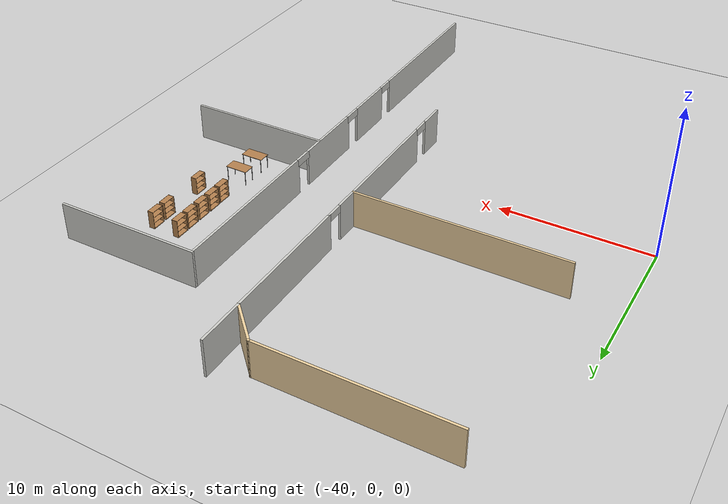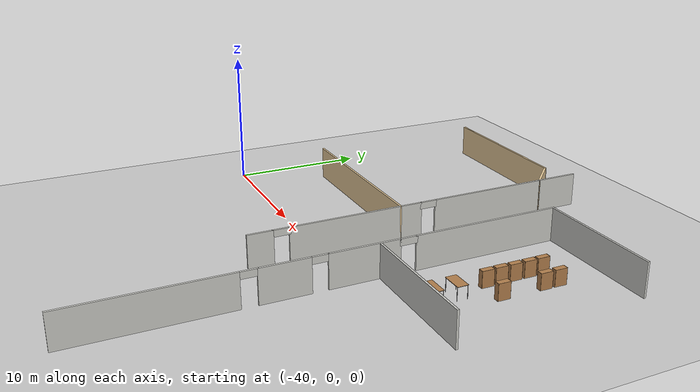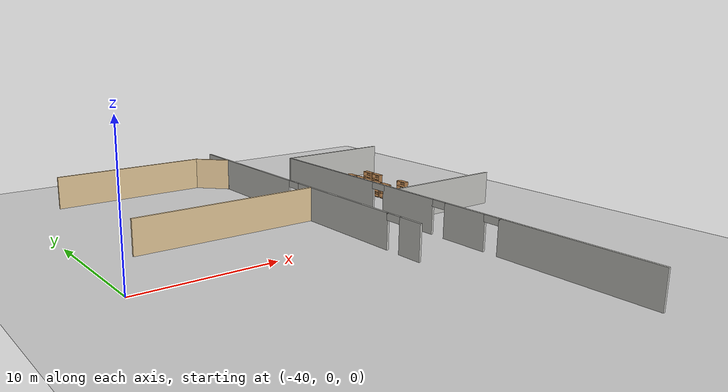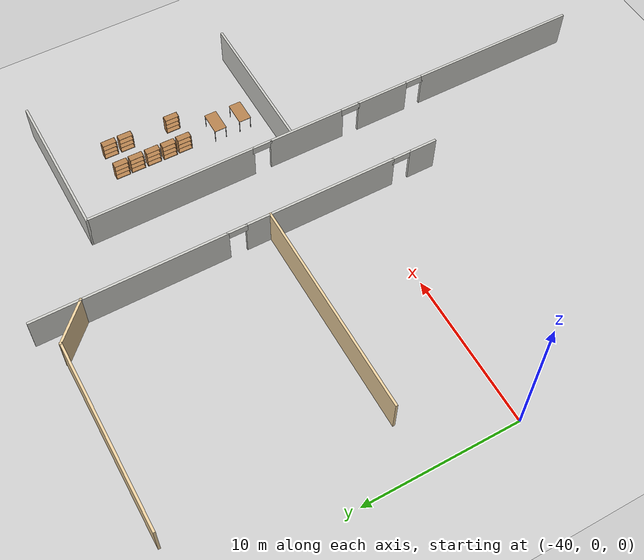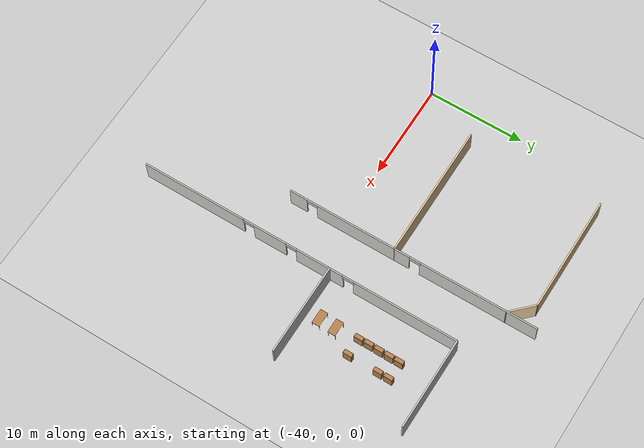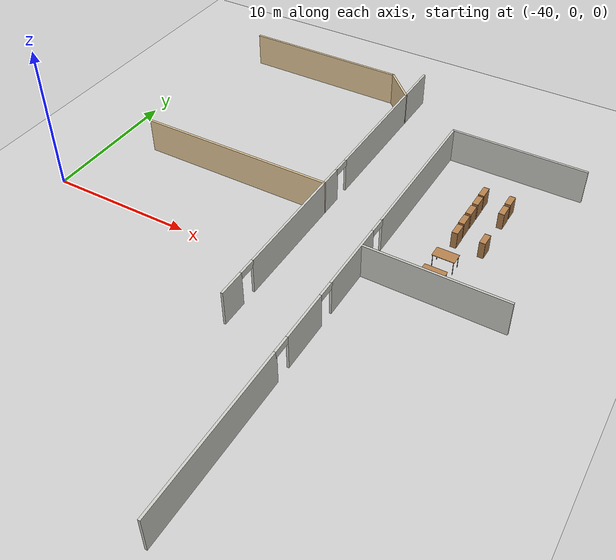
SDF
<sdf version="1.7">
 <world name="default">
  <model name="ground_plane">
   <static>1</static>
   <link name="link">
    <collision name="collision">
     <geometry><plane><normal>0 0 1</normal><size>100 100</size></plane></geometry>
     <surface>
      <contact><collide_bitmask>65535</collide_bitmask></contact>
      <friction><ode><mu>100</mu><mu2>50</mu2></ode></friction>
     </surface>
    </collision>
    <visual name="visual">
     <cast_shadows>0</cast_shadows>
     <geometry><plane><normal>0 0 1</normal><size>100 100</size></plane></geometry>
     <material>
      <script><uri>file://media/materials/scripts/gazebo.material</uri><name>Gazebo/Grey</name></script>
     </material>
    </visual>
   </link>
  </model>
  <model name="Building">
   <pose>0.746899 -1.50406 0 0 -0 1.57073</pose>
   <link name="Wall_27">
    <pose>1.91161 23.7463 0 0 -0 0</pose>
    <visual name="Wall_27_Visual_0">
     <pose>-4.71792 0 1.25 0 -0 0</pose>
     <geometry><box><size>1.86417 0.15 2.5</size></box></geometry>
     <material>
      <script><uri>file://media/materials/scripts/gazebo.material</uri><name>Gazebo/CeilingTiled</name></script>
      <ambient>1 1 1 1</ambient>
     </material>
     <meta><layer>0</layer></meta>
    </visual>
    <collision name="Wall_27_Collision_0">
     <geometry><box><size>1.86417 0.15 2.5</size></box></geometry>
     <pose>-4.71792 0 1.25 0 -0 0</pose>
    </collision>
    <visual name="Wall_27_Visual_1">
     <pose>1.48208 0 1.25 0 -0 0</pose>
     <geometry><box><size>8.33583 0.15 2.5</size></box></geometry>
     <material>
      <script><uri>file://media/materials/scripts/gazebo.material</uri><name>Gazebo/CeilingTiled</name></script>
      <ambient>1 1 1 1</ambient>
     </material>
     <meta><layer>0</layer></meta>
    </visual>
    <collision name="Wall_27_Collision_1">
     <geometry><box><size>8.33583 0.15 2.5</size></box></geometry>
     <pose>1.48208 0 1.25 0 -0 0</pose>
    </collision>
    <visual name="Wall_27_Visual_2">
     <pose>-3.23583 0 2.25 0 -0 0</pose>
     <geometry><box><size>1.3 0.15 0.5</size></box></geometry>
     <material>
      <script><uri>file://media/materials/scripts/gazebo.material</uri><name>Gazebo/CeilingTiled</name></script>
      <ambient>1 1 1 1</ambient>
     </material>
     <meta><layer>0</layer></meta>
    </visual>
    <collision name="Wall_27_Collision_2">
     <geometry><box><size>1.3 0.15 0.5</size></box></geometry>
     <pose>-3.23583 0 2.25 0 -0 0</pose>
    </collision>
   </link>
   <link name="Wall_28">
    <collision name="Wall_28_Collision">
     <geometry><box><size>14 0.15 2.5</size></box></geometry>
     <pose>0 0 1.25 0 -0 0</pose>
    </collision>
    <visual name="Wall_28_Visual">
     <pose>0 0 1.25 0 -0 0</pose>
     <geometry><box><size>14 0.15 2.5</size></box></geometry>
     <material>
      <script><uri>file://media/materials/scripts/gazebo.material</uri><name>Gazebo/Grey</name></script>
      <ambient>0.921569 0.807843 0.615686 1</ambient>
     </material>
     <meta><layer>0</layer></meta>
    </visual>
    <pose>7.58661 30.6713 0 0 -0 1.5708</pose>
   </link>
   <link name="Wall_30">
    <pose>13.5116 23.7463 0 0 -0 0</pose>
    <visual name="Wall_30_Visual_0">
     <pose>-5.09853 0 1.25 0 -0 0</pose>
     <geometry><box><size>1.60295 0.15 2.5</size></box></geometry>
     <material>
      <script><uri>file://media/materials/scripts/gazebo.material</uri><name>Gazebo/CeilingTiled</name></script>
      <ambient>1 1 1 1</ambient>
     </material>
     <meta><layer>0</layer></meta>
    </visual>
    <collision name="Wall_30_Collision_0">
     <geometry><box><size>1.60295 0.15 2.5</size></box></geometry>
     <pose>-5.09853 0 1.25 0 -0 0</pose>
    </collision>
    <visual name="Wall_30_Visual_1">
     <pose>1.35147 0 1.25 0 -0 0</pose>
     <geometry><box><size>9.09705 0.15 2.5</size></box></geometry>
     <material>
      <script><uri>file://media/materials/scripts/gazebo.material</uri><name>Gazebo/CeilingTiled</name></script>
      <ambient>1 1 1 1</ambient>
     </material>
     <meta><layer>0</layer></meta>
    </visual>
    <collision name="Wall_30_Collision_1">
     <geometry><box><size>9.09705 0.15 2.5</size></box></geometry>
     <pose>1.35147 0 1.25 0 -0 0</pose>
    </collision>
    <visual name="Wall_30_Visual_2">
     <pose>-3.74705 0 2.25 0 -0 0</pose>
     <geometry><box><size>1.3 0.15 0.5</size></box></geometry>
     <material>
      <script><uri>file://media/materials/scripts/gazebo.material</uri><name>Gazebo/CeilingTiled</name></script>
      <ambient>1 1 1 1</ambient>
     </material>
     <meta><layer>0</layer></meta>
    </visual>
    <collision name="Wall_30_Collision_2">
     <geometry><box><size>1.3 0.15 0.5</size></box></geometry>
     <pose>-3.74705 0 2.25 0 -0 0</pose>
    </collision>
   </link>
   <link name="Wall_31">
    <collision name="Wall_31_Collision">
     <geometry><box><size>3 0.15 2.5</size></box></geometry>
     <pose>0 0 1.25 0 -0 0</pose>
    </collision>
    <visual name="Wall_31_Visual">
     <pose>0 0 1.25 0 -0 0</pose>
     <geometry><box><size>3 0.15 2.5</size></box></geometry>
     <material>
      <script><uri>file://media/materials/scripts/gazebo.material</uri><name>Gazebo/Grey</name></script>
      <ambient>0.921569 0.807843 0.615686 1</ambient>
     </material>
     <meta><layer>0</layer></meta>
    </visual>
    <pose>20.4442 24.754 0 0 -0 0.785398</pose>
   </link>
   <link name="Wall_32">
    <collision name="Wall_32_Collision">
     <geometry><box><size>12 0.15 2.5</size></box></geometry>
     <pose>0 0 1.25 0 -0 0</pose>
    </collision>
    <visual name="Wall_32_Visual">
     <pose>0 0 1.25 0 -0 0</pose>
     <geometry><box><size>12 0.15 2.5</size></box></geometry>
     <material>
      <script><uri>file://media/materials/scripts/gazebo.material</uri><name>Gazebo/Grey</name></script>
      <ambient>0.921569 0.807843 0.615686 1</ambient>
     </material>
     <meta><layer>0</layer></meta>
    </visual>
    <pose>21.4519 31.6866 0 0 -0 1.5708</pose>
   </link>
   <link name="Wall_37">
    <collision name="Wall_37_Collision">
     <geometry><box><size>3.25 0.15 2.5</size></box></geometry>
     <pose>0 0 1.25 0 -0 0</pose>
    </collision>
    <visual name="Wall_37_Visual">
     <pose>0 0 1.25 0 -0 0</pose>
     <geometry><box><size>3.25 0.15 2.5</size></box></geometry>
     <material>
      <script><uri>file://media/materials/scripts/gazebo.material</uri><name>Gazebo/CeilingTiled</name></script>
      <ambient>1 1 1 1</ambient>
     </material>
     <meta><layer>0</layer></meta>
    </visual>
    <pose>20.9866 23.7463 0 0 -0 0</pose>
   </link>
   <link name="Wall_72">
    <pose>0.148448 18.9637 0 0 -0 0</pose>
    <visual name="Wall_72_Visual_0">
     <pose>-11.3876 0 1.25 0 -0 0</pose>
     <geometry><box><size>11.0248 0.15 2.5</size></box></geometry>
     <material>
      <script><uri>file://media/materials/scripts/gazebo.material</uri><name>Gazebo/CeilingTiled</name></script>
      <ambient>1 1 1 1</ambient>
     </material>
     <meta><layer>0</layer></meta>
    </visual>
    <collision name="Wall_72_Collision_0">
     <geometry><box><size>11.0248 0.15 2.5</size></box></geometry>
     <pose>-11.3876 0 1.25 0 -0 0</pose>
    </collision>
    <visual name="Wall_72_Visual_1">
     <pose>-3.01671 0 1.25 0 -0 0</pose>
     <geometry><box><size>3.5169 0.15 2.5</size></box></geometry>
     <material>
      <script><uri>file://media/materials/scripts/gazebo.material</uri><name>Gazebo/CeilingTiled</name></script>
      <ambient>1 1 1 1</ambient>
     </material>
     <meta><layer>0</layer></meta>
    </visual>
    <collision name="Wall_72_Collision_1">
     <geometry><box><size>3.5169 0.15 2.5</size></box></geometry>
     <pose>-3.01671 0 1.25 0 -0 0</pose>
    </collision>
    <visual name="Wall_72_Visual_2">
     <pose>2.38294 0 1.25 0 -0 0</pose>
     <geometry><box><size>5.0824 0.15 2.5</size></box></geometry>
     <material>
      <script><uri>file://media/materials/scripts/gazebo.material</uri><name>Gazebo/CeilingTiled</name></script>
      <ambient>1 1 1 1</ambient>
     </material>
     <meta><layer>0</layer></meta>
    </visual>
    <collision name="Wall_72_Collision_2">
     <geometry><box><size>5.0824 0.15 2.5</size></box></geometry>
     <pose>2.38294 0 1.25 0 -0 0</pose>
    </collision>
    <visual name="Wall_72_Visual_3">
     <pose>11.4621 0 1.25 0 -0 0</pose>
     <geometry><box><size>10.8759 0.15 2.5</size></box></geometry>
     <material>
      <script><uri>file://media/materials/scripts/gazebo.material</uri><name>Gazebo/CeilingTiled</name></script>
      <ambient>1 1 1 1</ambient>
     </material>
     <meta><layer>0</layer></meta>
    </visual>
    <collision name="Wall_72_Collision_3">
     <geometry><box><size>10.8759 0.15 2.5</size></box></geometry>
     <pose>11.4621 0 1.25 0 -0 0</pose>
    </collision>
    <visual name="Wall_72_Visual_4">
     <pose>-5.32516 0 2.25 0 -0 0</pose>
     <geometry><box><size>1.3 0.15 0.5</size></box></geometry>
     <material>
      <script><uri>file://media/materials/scripts/gazebo.material</uri><name>Gazebo/CeilingTiled</name></script>
      <ambient>1 1 1 1</ambient>
     </material>
     <meta><layer>0</layer></meta>
    </visual>
    <collision name="Wall_72_Collision_4">
     <geometry><box><size>1.3 0.15 0.5</size></box></geometry>
     <pose>-5.32516 0 2.25 0 -0 0</pose>
    </collision>
    <visual name="Wall_72_Visual_5">
     <pose>-0.708263 0 2.25 0 -0 0</pose>
     <geometry><box><size>1.3 0.15 0.5</size></box></geometry>
     <material>
      <script><uri>file://media/materials/scripts/gazebo.material</uri><name>Gazebo/CeilingTiled</name></script>
      <ambient>1 1 1 1</ambient>
     </material>
     <meta><layer>0</layer></meta>
    </visual>
    <collision name="Wall_72_Collision_5">
     <geometry><box><size>1.3 0.15 0.5</size></box></geometry>
     <pose>-0.708263 0 2.25 0 -0 0</pose>
    </collision>
    <visual name="Wall_72_Visual_6">
     <pose>5.47414 0 2.25 0 -0 0</pose>
     <geometry><box><size>1.3 0.15 0.5</size></box></geometry>
     <material>
      <script><uri>file://media/materials/scripts/gazebo.material</uri><name>Gazebo/CeilingTiled</name></script>
      <ambient>1 1 1 1</ambient>
     </material>
     <meta><layer>0</layer></meta>
    </visual>
    <collision name="Wall_72_Collision_6">
     <geometry><box><size>1.3 0.15 0.5</size></box></geometry>
     <pose>5.47414 0 2.25 0 -0 0</pose>
    </collision>
   </link>
   <link name="Wall_73">
    <collision name="Wall_73_Collision">
     <geometry><box><size>9.5 0.15 2.5</size></box></geometry>
     <pose>0 0 1.25 0 -0 0</pose>
    </collision>
    <visual name="Wall_73_Visual">
     <pose>0 0 1.25 0 -0 0</pose>
     <geometry><box><size>9.5 0.15 2.5</size></box></geometry>
     <material>
      <script><uri>file://media/materials/scripts/gazebo.material</uri><name>Gazebo/CeilingTiled</name></script>
      <ambient>1 1 1 1</ambient>
     </material>
     <meta><layer>0</layer></meta>
    </visual>
    <pose>17.0734 14.2887 0 0 0 -1.5708</pose>
   </link>
   <link name="Wall_78">
    <collision name="Wall_78_Collision">
     <geometry><box><size>9.5 0.15 2.5</size></box></geometry>
     <pose>0 0 1.25 0 -0 0</pose>
    </collision>
    <visual name="Wall_78_Visual">
     <pose>0 0 1.25 0 -0 0</pose>
     <geometry><box><size>9.5 0.15 2.5</size></box></geometry>
     <material>
      <script><uri>file://media/materials/scripts/gazebo.material</uri><name>Gazebo/CeilingTiled</name></script>
      <ambient>1 1 1 1</ambient>
     </material>
     <meta><layer>0</layer></meta>
    </visual>
    <pose>3.60601 14.2765 0 0 0 -1.5708</pose>
   </link>
   <static>1</static>
  </model>
  <model name="table_clone_clone">
   <static>1</static>
   <link name="link">
    <collision name="surface">
     <pose>0 0 1 0 -0 0</pose>
     <geometry><box><size>1.5 0.8 0.03</size></box></geometry>
     <surface><friction><ode><mu>0.6</mu><mu2>0.6</mu2></ode></friction></surface>
    </collision>
    <visual name="visual1">
     <pose>0 0 1 0 -0 0</pose>
     <geometry><box><size>1.5 0.8 0.03</size></box></geometry>
     <material>
      <script><uri>file://media/materials/scripts/gazebo.material</uri><name>Gazebo/Wood</name></script>
     </material>
    </visual>
    <collision name="front_left_leg">
     <pose>0.68 0.38 0.5 0 -0 0</pose>
     <geometry><cylinder><radius>0.02</radius><length>1</length></cylinder></geometry>
    </collision>
    <visual name="front_left_leg">
     <pose>0.68 0.38 0.5 0 -0 0</pose>
     <geometry><cylinder><radius>0.02</radius><length>1</length></cylinder></geometry>
     <material>
      <script><uri>file://media/materials/scripts/gazebo.material</uri><name>Gazebo/Grey</name></script>
     </material>
    </visual>
    <collision name="front_right_leg">
     <pose>0.68 -0.38 0.5 0 -0 0</pose>
     <geometry><cylinder><radius>0.02</radius><length>1</length></cylinder></geometry>
    </collision>
    <visual name="front_right_leg">
     <pose>0.68 -0.38 0.5 0 -0 0</pose>
     <geometry><cylinder><radius>0.02</radius><length>1</length></cylinder></geometry>
     <material>
      <script><uri>file://media/materials/scripts/gazebo.material</uri><name>Gazebo/Grey</name></script>
     </material>
    </visual>
    <collision name="back_right_leg">
     <pose>-0.68 -0.38 0.5 0 -0 0</pose>
     <geometry><cylinder><radius>0.02</radius><length>1</length></cylinder></geometry>
    </collision>
    <visual name="back_right_leg">
     <pose>-0.68 -0.38 0.5 0 -0 0</pose>
     <geometry><cylinder><radius>0.02</radius><length>1</length></cylinder></geometry>
     <material>
      <script><uri>file://media/materials/scripts/gazebo.material</uri><name>Gazebo/Grey</name></script>
     </material>
    </visual>
    <collision name="back_left_leg">
     <pose>-0.68 0.38 0.5 0 -0 0</pose>
     <geometry><cylinder><radius>0.02</radius><length>1</length></cylinder></geometry>
    </collision>
    <visual name="back_left_leg">
     <pose>-0.68 0.38 0.5 0 -0 0</pose>
     <geometry><cylinder><radius>0.02</radius><length>1</length></cylinder></geometry>
     <material>
      <script><uri>file://media/materials/scripts/gazebo.material</uri><name>Gazebo/Grey</name></script>
     </material>
    </visual>
   </link>
   <pose>-14.1021 5.31091 0 0 -0 0</pose>
  </model>
  <model name="table_clone_clone_1">
   <static>1</static>
   <link name="link">
    <collision name="surface">
     <pose>0 0 1 0 -0 0</pose>
     <geometry><box><size>1.5 0.8 0.03</size></box></geometry>
     <surface><friction><ode><mu>0.6</mu><mu2>0.6</mu2></ode></friction></surface>
    </collision>
    <visual name="visual1">
     <pose>0 0 1 0 -0 0</pose>
     <geometry><box><size>1.5 0.8 0.03</size></box></geometry>
     <material>
      <script><uri>file://media/materials/scripts/gazebo.material</uri><name>Gazebo/Wood</name></script>
     </material>
    </visual>
    <collision name="front_left_leg">
     <pose>0.68 0.38 0.5 0 -0 0</pose>
     <geometry><cylinder><radius>0.02</radius><length>1</length></cylinder></geometry>
    </collision>
    <visual name="front_left_leg">
     <pose>0.68 0.38 0.5 0 -0 0</pose>
     <geometry><cylinder><radius>0.02</radius><length>1</length></cylinder></geometry>
     <material>
      <script><uri>file://media/materials/scripts/gazebo.material</uri><name>Gazebo/Grey</name></script>
     </material>
    </visual>
    <collision name="front_right_leg">
     <pose>0.68 -0.38 0.5 0 -0 0</pose>
     <geometry><cylinder><radius>0.02</radius><length>1</length></cylinder></geometry>
    </collision>
    <visual name="front_right_leg">
     <pose>0.68 -0.38 0.5 0 -0 0</pose>
     <geometry><cylinder><radius>0.02</radius><length>1</length></cylinder></geometry>
     <material>
      <script><uri>file://media/materials/scripts/gazebo.material</uri><name>Gazebo/Grey</name></script>
     </material>
    </visual>
    <collision name="back_right_leg">
     <pose>-0.68 -0.38 0.5 0 -0 0</pose>
     <geometry><cylinder><radius>0.02</radius><length>1</length></cylinder></geometry>
    </collision>
    <visual name="back_right_leg">
     <pose>-0.68 -0.38 0.5 0 -0 0</pose>
     <geometry><cylinder><radius>0.02</radius><length>1</length></cylinder></geometry>
     <material>
      <script><uri>file://media/materials/scripts/gazebo.material</uri><name>Gazebo/Grey</name></script>
     </material>
    </visual>
    <collision name="back_left_leg">
     <pose>-0.68 0.38 0.5 0 -0 0</pose>
     <geometry><cylinder><radius>0.02</radius><length>1</length></cylinder></geometry>
    </collision>
    <visual name="back_left_leg">
     <pose>-0.68 0.38 0.5 0 -0 0</pose>
     <geometry><cylinder><radius>0.02</radius><length>1</length></cylinder></geometry>
     <material>
      <script><uri>file://media/materials/scripts/gazebo.material</uri><name>Gazebo/Grey</name></script>
     </material>
    </visual>
   </link>
   <pose>-14.14 3.6035 0 0 -0 0</pose>
  </model>
  <model name="bookshelf_clone_1_clone_clone_clone_3">
   <static>1</static>
   <link name="link">
    <inertial><mass>1</mass></inertial>
    <collision name="back">
     <pose>0 0.005 0.6 0 -0 0</pose>
     <geometry><box><size>0.9 0.01 1.2</size></box></geometry>
    </collision>
    <visual name="visual1">
     <pose>0 0.005 0.6 0 -0 0</pose>
     <geometry><box><size>0.9 0.01 1.2</size></box></geometry>
     <material>
      <script><uri>file://media/materials/scripts/gazebo.material</uri><name>Gazebo/Wood</name></script>
     </material>
    </visual>
    <collision name="left_side">
     <pose>0.45 -0.195 0.6 0 -0 0</pose>
     <geometry><box><size>0.02 0.4 1.2</size></box></geometry>
    </collision>
    <visual name="visual2">
     <pose>0.45 -0.195 0.6 0 -0 0</pose>
     <geometry><box><size>0.02 0.4 1.2</size></box></geometry>
     <material>
      <script><uri>file://media/materials/scripts/gazebo.material</uri><name>Gazebo/Wood</name></script>
     </material>
    </visual>
    <collision name="right_side">
     <pose>-0.45 -0.195 0.6 0 -0 0</pose>
     <geometry><box><size>0.02 0.4 1.2</size></box></geometry>
    </collision>
    <visual name="visual3">
     <pose>-0.45 -0.195 0.6 0 -0 0</pose>
     <geometry><box><size>0.02 0.4 1.2</size></box></geometry>
     <material>
      <script><uri>file://media/materials/scripts/gazebo.material</uri><name>Gazebo/Wood</name></script>
     </material>
    </visual>
    <collision name="bottom">
     <pose>0 -0.195 0.03 0 -0 0</pose>
     <geometry><box><size>0.88 0.4 0.06</size></box></geometry>
    </collision>
    <visual name="visual4">
     <pose>0 -0.195 0.03 0 -0 0</pose>
     <geometry><box><size>0.88 0.4 0.06</size></box></geometry>
     <material>
      <script><uri>file://media/materials/scripts/gazebo.material</uri><name>Gazebo/Wood</name></script>
     </material>
    </visual>
    <collision name="top">
     <pose>0 -0.195 1.19 0 -0 0</pose>
     <geometry><box><size>0.88 0.4 0.02</size></box></geometry>
    </collision>
    <visual name="visual5">
     <pose>0 -0.195 1.19 0 -0 0</pose>
     <geometry><box><size>0.88 0.4 0.02</size></box></geometry>
     <material>
      <script><uri>file://media/materials/scripts/gazebo.material</uri><name>Gazebo/Wood</name></script>
     </material>
    </visual>
    <collision name="low_shelf">
     <pose>0 -0.195 0.43 0 -0 0</pose>
     <geometry><box><size>0.88 0.4 0.02</size></box></geometry>
    </collision>
    <visual name="visual6">
     <pose>0 -0.195 0.43 0 -0 0</pose>
     <geometry><box><size>0.88 0.4 0.02</size></box></geometry>
     <material>
      <script><uri>file://media/materials/scripts/gazebo.material</uri><name>Gazebo/Wood</name></script>
     </material>
    </visual>
    <collision name="high_shelf">
     <pose>0 -0.195 0.8 0 -0 0</pose>
     <geometry><box><size>0.88 0.4 0.02</size></box></geometry>
    </collision>
    <visual name="visual7">
     <pose>0 -0.195 0.8 0 -0 0</pose>
     <geometry><box><size>0.88 0.4 0.02</size></box></geometry>
     <material>
      <script><uri>file://media/materials/scripts/gazebo.material</uri><name>Gazebo/Wood</name></script>
     </material>
    </visual>
   </link>
   <pose>-12.3341 11.9051 0 0 0 -1.58278</pose>
  </model>
  <model name="bookshelf_clone_1_clone_clone_clone_4">
   <static>1</static>
   <link name="link">
    <inertial><mass>1</mass></inertial>
    <collision name="back">
     <pose>0 0.005 0.6 0 -0 0</pose>
     <geometry><box><size>0.9 0.01 1.2</size></box></geometry>
    </collision>
    <visual name="visual1">
     <pose>0 0.005 0.6 0 -0 0</pose>
     <geometry><box><size>0.9 0.01 1.2</size></box></geometry>
     <material>
      <script><uri>file://media/materials/scripts/gazebo.material</uri><name>Gazebo/Wood</name></script>
     </material>
    </visual>
    <collision name="left_side">
     <pose>0.45 -0.195 0.6 0 -0 0</pose>
     <geometry><box><size>0.02 0.4 1.2</size></box></geometry>
    </collision>
    <visual name="visual2">
     <pose>0.45 -0.195 0.6 0 -0 0</pose>
     <geometry><box><size>0.02 0.4 1.2</size></box></geometry>
     <material>
      <script><uri>file://media/materials/scripts/gazebo.material</uri><name>Gazebo/Wood</name></script>
     </material>
    </visual>
    <collision name="right_side">
     <pose>-0.45 -0.195 0.6 0 -0 0</pose>
     <geometry><box><size>0.02 0.4 1.2</size></box></geometry>
    </collision>
    <visual name="visual3">
     <pose>-0.45 -0.195 0.6 0 -0 0</pose>
     <geometry><box><size>0.02 0.4 1.2</size></box></geometry>
     <material>
      <script><uri>file://media/materials/scripts/gazebo.material</uri><name>Gazebo/Wood</name></script>
     </material>
    </visual>
    <collision name="bottom">
     <pose>0 -0.195 0.03 0 -0 0</pose>
     <geometry><box><size>0.88 0.4 0.06</size></box></geometry>
    </collision>
    <visual name="visual4">
     <pose>0 -0.195 0.03 0 -0 0</pose>
     <geometry><box><size>0.88 0.4 0.06</size></box></geometry>
     <material>
      <script><uri>file://media/materials/scripts/gazebo.material</uri><name>Gazebo/Wood</name></script>
     </material>
    </visual>
    <collision name="top">
     <pose>0 -0.195 1.19 0 -0 0</pose>
     <geometry><box><size>0.88 0.4 0.02</size></box></geometry>
    </collision>
    <visual name="visual5">
     <pose>0 -0.195 1.19 0 -0 0</pose>
     <geometry><box><size>0.88 0.4 0.02</size></box></geometry>
     <material>
      <script><uri>file://media/materials/scripts/gazebo.material</uri><name>Gazebo/Wood</name></script>
     </material>
    </visual>
    <collision name="low_shelf">
     <pose>0 -0.195 0.43 0 -0 0</pose>
     <geometry><box><size>0.88 0.4 0.02</size></box></geometry>
    </collision>
    <visual name="visual6">
     <pose>0 -0.195 0.43 0 -0 0</pose>
     <geometry><box><size>0.88 0.4 0.02</size></box></geometry>
     <material>
      <script><uri>file://media/materials/scripts/gazebo.material</uri><name>Gazebo/Wood</name></script>
     </material>
    </visual>
    <collision name="high_shelf">
     <pose>0 -0.195 0.8 0 -0 0</pose>
     <geometry><box><size>0.88 0.4 0.02</size></box></geometry>
    </collision>
    <visual name="visual7">
     <pose>0 -0.195 0.8 0 -0 0</pose>
     <geometry><box><size>0.88 0.4 0.02</size></box></geometry>
     <material>
      <script><uri>file://media/materials/scripts/gazebo.material</uri><name>Gazebo/Wood</name></script>
     </material>
    </visual>
   </link>
   <pose>-12.3333 10.8035 0 0 0 -1.58278</pose>
  </model>
  <model name="bookshelf_clone_1_clone_clone_clone_7">
   <static>1</static>
   <link name="link">
    <inertial><mass>1</mass></inertial>
    <collision name="back">
     <pose>0 0.005 0.6 0 -0 0</pose>
     <geometry><box><size>0.9 0.01 1.2</size></box></geometry>
    </collision>
    <visual name="visual1">
     <pose>0 0.005 0.6 0 -0 0</pose>
     <geometry><box><size>0.9 0.01 1.2</size></box></geometry>
     <material>
      <script><uri>file://media/materials/scripts/gazebo.material</uri><name>Gazebo/Wood</name></script>
     </material>
    </visual>
    <collision name="left_side">
     <pose>0.45 -0.195 0.6 0 -0 0</pose>
     <geometry><box><size>0.02 0.4 1.2</size></box></geometry>
    </collision>
    <visual name="visual2">
     <pose>0.45 -0.195 0.6 0 -0 0</pose>
     <geometry><box><size>0.02 0.4 1.2</size></box></geometry>
     <material>
      <script><uri>file://media/materials/scripts/gazebo.material</uri><name>Gazebo/Wood</name></script>
     </material>
    </visual>
    <collision name="right_side">
     <pose>-0.45 -0.195 0.6 0 -0 0</pose>
     <geometry><box><size>0.02 0.4 1.2</size></box></geometry>
    </collision>
    <visual name="visual3">
     <pose>-0.45 -0.195 0.6 0 -0 0</pose>
     <geometry><box><size>0.02 0.4 1.2</size></box></geometry>
     <material>
      <script><uri>file://media/materials/scripts/gazebo.material</uri><name>Gazebo/Wood</name></script>
     </material>
    </visual>
    <collision name="bottom">
     <pose>0 -0.195 0.03 0 -0 0</pose>
     <geometry><box><size>0.88 0.4 0.06</size></box></geometry>
    </collision>
    <visual name="visual4">
     <pose>0 -0.195 0.03 0 -0 0</pose>
     <geometry><box><size>0.88 0.4 0.06</size></box></geometry>
     <material>
      <script><uri>file://media/materials/scripts/gazebo.material</uri><name>Gazebo/Wood</name></script>
     </material>
    </visual>
    <collision name="top">
     <pose>0 -0.195 1.19 0 -0 0</pose>
     <geometry><box><size>0.88 0.4 0.02</size></box></geometry>
    </collision>
    <visual name="visual5">
     <pose>0 -0.195 1.19 0 -0 0</pose>
     <geometry><box><size>0.88 0.4 0.02</size></box></geometry>
     <material>
      <script><uri>file://media/materials/scripts/gazebo.material</uri><name>Gazebo/Wood</name></script>
     </material>
    </visual>
    <collision name="low_shelf">
     <pose>0 -0.195 0.43 0 -0 0</pose>
     <geometry><box><size>0.88 0.4 0.02</size></box></geometry>
    </collision>
    <visual name="visual6">
     <pose>0 -0.195 0.43 0 -0 0</pose>
     <geometry><box><size>0.88 0.4 0.02</size></box></geometry>
     <material>
      <script><uri>file://media/materials/scripts/gazebo.material</uri><name>Gazebo/Wood</name></script>
     </material>
    </visual>
    <collision name="high_shelf">
     <pose>0 -0.195 0.8 0 -0 0</pose>
     <geometry><box><size>0.88 0.4 0.02</size></box></geometry>
    </collision>
    <visual name="visual7">
     <pose>0 -0.195 0.8 0 -0 0</pose>
     <geometry><box><size>0.88 0.4 0.02</size></box></geometry>
     <material>
      <script><uri>file://media/materials/scripts/gazebo.material</uri><name>Gazebo/Wood</name></script>
     </material>
    </visual>
   </link>
   <pose>-12.3401 7.64333 0 0 0 -1.58278</pose>
  </model>
  <model name="bookshelf_clone_1_clone_clone_clone_8">
   <static>1</static>
   <link name="link">
    <inertial><mass>1</mass></inertial>
    <collision name="back">
     <pose>0 0.005 0.6 0 -0 0</pose>
     <geometry><box><size>0.9 0.01 1.2</size></box></geometry>
    </collision>
    <visual name="visual1">
     <pose>0 0.005 0.6 0 -0 0</pose>
     <geometry><box><size>0.9 0.01 1.2</size></box></geometry>
     <material>
      <script><uri>file://media/materials/scripts/gazebo.material</uri><name>Gazebo/Wood</name></script>
     </material>
    </visual>
    <collision name="left_side">
     <pose>0.45 -0.195 0.6 0 -0 0</pose>
     <geometry><box><size>0.02 0.4 1.2</size></box></geometry>
    </collision>
    <visual name="visual2">
     <pose>0.45 -0.195 0.6 0 -0 0</pose>
     <geometry><box><size>0.02 0.4 1.2</size></box></geometry>
     <material>
      <script><uri>file://media/materials/scripts/gazebo.material</uri><name>Gazebo/Wood</name></script>
     </material>
    </visual>
    <collision name="right_side">
     <pose>-0.45 -0.195 0.6 0 -0 0</pose>
     <geometry><box><size>0.02 0.4 1.2</size></box></geometry>
    </collision>
    <visual name="visual3">
     <pose>-0.45 -0.195 0.6 0 -0 0</pose>
     <geometry><box><size>0.02 0.4 1.2</size></box></geometry>
     <material>
      <script><uri>file://media/materials/scripts/gazebo.material</uri><name>Gazebo/Wood</name></script>
     </material>
    </visual>
    <collision name="bottom">
     <pose>0 -0.195 0.03 0 -0 0</pose>
     <geometry><box><size>0.88 0.4 0.06</size></box></geometry>
    </collision>
    <visual name="visual4">
     <pose>0 -0.195 0.03 0 -0 0</pose>
     <geometry><box><size>0.88 0.4 0.06</size></box></geometry>
     <material>
      <script><uri>file://media/materials/scripts/gazebo.material</uri><name>Gazebo/Wood</name></script>
     </material>
    </visual>
    <collision name="top">
     <pose>0 -0.195 1.19 0 -0 0</pose>
     <geometry><box><size>0.88 0.4 0.02</size></box></geometry>
    </collision>
    <visual name="visual5">
     <pose>0 -0.195 1.19 0 -0 0</pose>
     <geometry><box><size>0.88 0.4 0.02</size></box></geometry>
     <material>
      <script><uri>file://media/materials/scripts/gazebo.material</uri><name>Gazebo/Wood</name></script>
     </material>
    </visual>
    <collision name="low_shelf">
     <pose>0 -0.195 0.43 0 -0 0</pose>
     <geometry><box><size>0.88 0.4 0.02</size></box></geometry>
    </collision>
    <visual name="visual6">
     <pose>0 -0.195 0.43 0 -0 0</pose>
     <geometry><box><size>0.88 0.4 0.02</size></box></geometry>
     <material>
      <script><uri>file://media/materials/scripts/gazebo.material</uri><name>Gazebo/Wood</name></script>
     </material>
    </visual>
    <collision name="high_shelf">
     <pose>0 -0.195 0.8 0 -0 0</pose>
     <geometry><box><size>0.88 0.4 0.02</size></box></geometry>
    </collision>
    <visual name="visual7">
     <pose>0 -0.195 0.8 0 -0 0</pose>
     <geometry><box><size>0.88 0.4 0.02</size></box></geometry>
     <material>
      <script><uri>file://media/materials/scripts/gazebo.material</uri><name>Gazebo/Wood</name></script>
     </material>
    </visual>
   </link>
   <pose>-14.1464 11.9088 0 0 0 -1.58278</pose>
  </model>
  <model name="bookshelf_clone_1_clone_clone_clone_9">
   <static>1</static>
   <link name="link">
    <inertial><mass>1</mass></inertial>
    <collision name="back">
     <pose>0 0.005 0.6 0 -0 0</pose>
     <geometry><box><size>0.9 0.01 1.2</size></box></geometry>
    </collision>
    <visual name="visual1">
     <pose>0 0.005 0.6 0 -0 0</pose>
     <geometry><box><size>0.9 0.01 1.2</size></box></geometry>
     <material>
      <script><uri>file://media/materials/scripts/gazebo.material</uri><name>Gazebo/Wood</name></script>
     </material>
    </visual>
    <collision name="left_side">
     <pose>0.45 -0.195 0.6 0 -0 0</pose>
     <geometry><box><size>0.02 0.4 1.2</size></box></geometry>
    </collision>
    <visual name="visual2">
     <pose>0.45 -0.195 0.6 0 -0 0</pose>
     <geometry><box><size>0.02 0.4 1.2</size></box></geometry>
     <material>
      <script><uri>file://media/materials/scripts/gazebo.material</uri><name>Gazebo/Wood</name></script>
     </material>
    </visual>
    <collision name="right_side">
     <pose>-0.45 -0.195 0.6 0 -0 0</pose>
     <geometry><box><size>0.02 0.4 1.2</size></box></geometry>
    </collision>
    <visual name="visual3">
     <pose>-0.45 -0.195 0.6 0 -0 0</pose>
     <geometry><box><size>0.02 0.4 1.2</size></box></geometry>
     <material>
      <script><uri>file://media/materials/scripts/gazebo.material</uri><name>Gazebo/Wood</name></script>
     </material>
    </visual>
    <collision name="bottom">
     <pose>0 -0.195 0.03 0 -0 0</pose>
     <geometry><box><size>0.88 0.4 0.06</size></box></geometry>
    </collision>
    <visual name="visual4">
     <pose>0 -0.195 0.03 0 -0 0</pose>
     <geometry><box><size>0.88 0.4 0.06</size></box></geometry>
     <material>
      <script><uri>file://media/materials/scripts/gazebo.material</uri><name>Gazebo/Wood</name></script>
     </material>
    </visual>
    <collision name="top">
     <pose>0 -0.195 1.19 0 -0 0</pose>
     <geometry><box><size>0.88 0.4 0.02</size></box></geometry>
    </collision>
    <visual name="visual5">
     <pose>0 -0.195 1.19 0 -0 0</pose>
     <geometry><box><size>0.88 0.4 0.02</size></box></geometry>
     <material>
      <script><uri>file://media/materials/scripts/gazebo.material</uri><name>Gazebo/Wood</name></script>
     </material>
    </visual>
    <collision name="low_shelf">
     <pose>0 -0.195 0.43 0 -0 0</pose>
     <geometry><box><size>0.88 0.4 0.02</size></box></geometry>
    </collision>
    <visual name="visual6">
     <pose>0 -0.195 0.43 0 -0 0</pose>
     <geometry><box><size>0.88 0.4 0.02</size></box></geometry>
     <material>
      <script><uri>file://media/materials/scripts/gazebo.material</uri><name>Gazebo/Wood</name></script>
     </material>
    </visual>
    <collision name="high_shelf">
     <pose>0 -0.195 0.8 0 -0 0</pose>
     <geometry><box><size>0.88 0.4 0.02</size></box></geometry>
    </collision>
    <visual name="visual7">
     <pose>0 -0.195 0.8 0 -0 0</pose>
     <geometry><box><size>0.88 0.4 0.02</size></box></geometry>
     <material>
      <script><uri>file://media/materials/scripts/gazebo.material</uri><name>Gazebo/Wood</name></script>
     </material>
    </visual>
   </link>
   <pose>-14.1438 10.8753 0 0 0 -1.58278</pose>
  </model>
  <model name="bookshelf_clone_1_clone_clone_clone_10">
   <static>1</static>
   <link name="link">
    <inertial><mass>1</mass></inertial>
    <collision name="back">
     <pose>0 0.005 0.6 0 -0 0</pose>
     <geometry><box><size>0.9 0.01 1.2</size></box></geometry>
    </collision>
    <visual name="visual1">
     <pose>0 0.005 0.6 0 -0 0</pose>
     <geometry><box><size>0.9 0.01 1.2</size></box></geometry>
     <material>
      <script><uri>file://media/materials/scripts/gazebo.material</uri><name>Gazebo/Wood</name></script>
     </material>
    </visual>
    <collision name="left_side">
     <pose>0.45 -0.195 0.6 0 -0 0</pose>
     <geometry><box><size>0.02 0.4 1.2</size></box></geometry>
    </collision>
    <visual name="visual2">
     <pose>0.45 -0.195 0.6 0 -0 0</pose>
     <geometry><box><size>0.02 0.4 1.2</size></box></geometry>
     <material>
      <script><uri>file://media/materials/scripts/gazebo.material</uri><name>Gazebo/Wood</name></script>
     </material>
    </visual>
    <collision name="right_side">
     <pose>-0.45 -0.195 0.6 0 -0 0</pose>
     <geometry><box><size>0.02 0.4 1.2</size></box></geometry>
    </collision>
    <visual name="visual3">
     <pose>-0.45 -0.195 0.6 0 -0 0</pose>
     <geometry><box><size>0.02 0.4 1.2</size></box></geometry>
     <material>
      <script><uri>file://media/materials/scripts/gazebo.material</uri><name>Gazebo/Wood</name></script>
     </material>
    </visual>
    <collision name="bottom">
     <pose>0 -0.195 0.03 0 -0 0</pose>
     <geometry><box><size>0.88 0.4 0.06</size></box></geometry>
    </collision>
    <visual name="visual4">
     <pose>0 -0.195 0.03 0 -0 0</pose>
     <geometry><box><size>0.88 0.4 0.06</size></box></geometry>
     <material>
      <script><uri>file://media/materials/scripts/gazebo.material</uri><name>Gazebo/Wood</name></script>
     </material>
    </visual>
    <collision name="top">
     <pose>0 -0.195 1.19 0 -0 0</pose>
     <geometry><box><size>0.88 0.4 0.02</size></box></geometry>
    </collision>
    <visual name="visual5">
     <pose>0 -0.195 1.19 0 -0 0</pose>
     <geometry><box><size>0.88 0.4 0.02</size></box></geometry>
     <material>
      <script><uri>file://media/materials/scripts/gazebo.material</uri><name>Gazebo/Wood</name></script>
     </material>
    </visual>
    <collision name="low_shelf">
     <pose>0 -0.195 0.43 0 -0 0</pose>
     <geometry><box><size>0.88 0.4 0.02</size></box></geometry>
    </collision>
    <visual name="visual6">
     <pose>0 -0.195 0.43 0 -0 0</pose>
     <geometry><box><size>0.88 0.4 0.02</size></box></geometry>
     <material>
      <script><uri>file://media/materials/scripts/gazebo.material</uri><name>Gazebo/Wood</name></script>
     </material>
    </visual>
    <collision name="high_shelf">
     <pose>0 -0.195 0.8 0 -0 0</pose>
     <geometry><box><size>0.88 0.4 0.02</size></box></geometry>
    </collision>
    <visual name="visual7">
     <pose>0 -0.195 0.8 0 -0 0</pose>
     <geometry><box><size>0.88 0.4 0.02</size></box></geometry>
     <material>
      <script><uri>file://media/materials/scripts/gazebo.material</uri><name>Gazebo/Wood</name></script>
     </material>
    </visual>
   </link>
   <pose>-14.1569 9.78536 0 0 0 -1.58278</pose>
  </model>
  <model name="bookshelf_clone_1_clone_clone_clone_11">
   <static>1</static>
   <link name="link">
    <inertial><mass>1</mass></inertial>
    <collision name="back">
     <pose>0 0.005 0.6 0 -0 0</pose>
     <geometry><box><size>0.9 0.01 1.2</size></box></geometry>
    </collision>
    <visual name="visual1">
     <pose>0 0.005 0.6 0 -0 0</pose>
     <geometry><box><size>0.9 0.01 1.2</size></box></geometry>
     <material>
      <script><uri>file://media/materials/scripts/gazebo.material</uri><name>Gazebo/Wood</name></script>
     </material>
    </visual>
    <collision name="left_side">
     <pose>0.45 -0.195 0.6 0 -0 0</pose>
     <geometry><box><size>0.02 0.4 1.2</size></box></geometry>
    </collision>
    <visual name="visual2">
     <pose>0.45 -0.195 0.6 0 -0 0</pose>
     <geometry><box><size>0.02 0.4 1.2</size></box></geometry>
     <material>
      <script><uri>file://media/materials/scripts/gazebo.material</uri><name>Gazebo/Wood</name></script>
     </material>
    </visual>
    <collision name="right_side">
     <pose>-0.45 -0.195 0.6 0 -0 0</pose>
     <geometry><box><size>0.02 0.4 1.2</size></box></geometry>
    </collision>
    <visual name="visual3">
     <pose>-0.45 -0.195 0.6 0 -0 0</pose>
     <geometry><box><size>0.02 0.4 1.2</size></box></geometry>
     <material>
      <script><uri>file://media/materials/scripts/gazebo.material</uri><name>Gazebo/Wood</name></script>
     </material>
    </visual>
    <collision name="bottom">
     <pose>0 -0.195 0.03 0 -0 0</pose>
     <geometry><box><size>0.88 0.4 0.06</size></box></geometry>
    </collision>
    <visual name="visual4">
     <pose>0 -0.195 0.03 0 -0 0</pose>
     <geometry><box><size>0.88 0.4 0.06</size></box></geometry>
     <material>
      <script><uri>file://media/materials/scripts/gazebo.material</uri><name>Gazebo/Wood</name></script>
     </material>
    </visual>
    <collision name="top">
     <pose>0 -0.195 1.19 0 -0 0</pose>
     <geometry><box><size>0.88 0.4 0.02</size></box></geometry>
    </collision>
    <visual name="visual5">
     <pose>0 -0.195 1.19 0 -0 0</pose>
     <geometry><box><size>0.88 0.4 0.02</size></box></geometry>
     <material>
      <script><uri>file://media/materials/scripts/gazebo.material</uri><name>Gazebo/Wood</name></script>
     </material>
    </visual>
    <collision name="low_shelf">
     <pose>0 -0.195 0.43 0 -0 0</pose>
     <geometry><box><size>0.88 0.4 0.02</size></box></geometry>
    </collision>
    <visual name="visual6">
     <pose>0 -0.195 0.43 0 -0 0</pose>
     <geometry><box><size>0.88 0.4 0.02</size></box></geometry>
     <material>
      <script><uri>file://media/materials/scripts/gazebo.material</uri><name>Gazebo/Wood</name></script>
     </material>
    </visual>
    <collision name="high_shelf">
     <pose>0 -0.195 0.8 0 -0 0</pose>
     <geometry><box><size>0.88 0.4 0.02</size></box></geometry>
    </collision>
    <visual name="visual7">
     <pose>0 -0.195 0.8 0 -0 0</pose>
     <geometry><box><size>0.88 0.4 0.02</size></box></geometry>
     <material>
      <script><uri>file://media/materials/scripts/gazebo.material</uri><name>Gazebo/Wood</name></script>
     </material>
    </visual>
   </link>
   <pose>-14.1758 8.70929 0 0 0 -1.58278</pose>
  </model>
  <model name="bookshelf_clone_1_clone_clone_clone_12">
   <static>1</static>
   <link name="link">
    <inertial><mass>1</mass></inertial>
    <collision name="back">
     <pose>0 0.005 0.6 0 -0 0</pose>
     <geometry><box><size>0.9 0.01 1.2</size></box></geometry>
    </collision>
    <visual name="visual1">
     <pose>0 0.005 0.6 0 -0 0</pose>
     <geometry><box><size>0.9 0.01 1.2</size></box></geometry>
     <material>
      <script><uri>file://media/materials/scripts/gazebo.material</uri><name>Gazebo/Wood</name></script>
     </material>
    </visual>
    <collision name="left_side">
     <pose>0.45 -0.195 0.6 0 -0 0</pose>
     <geometry><box><size>0.02 0.4 1.2</size></box></geometry>
    </collision>
    <visual name="visual2">
     <pose>0.45 -0.195 0.6 0 -0 0</pose>
     <geometry><box><size>0.02 0.4 1.2</size></box></geometry>
     <material>
      <script><uri>file://media/materials/scripts/gazebo.material</uri><name>Gazebo/Wood</name></script>
     </material>
    </visual>
    <collision name="right_side">
     <pose>-0.45 -0.195 0.6 0 -0 0</pose>
     <geometry><box><size>0.02 0.4 1.2</size></box></geometry>
    </collision>
    <visual name="visual3">
     <pose>-0.45 -0.195 0.6 0 -0 0</pose>
     <geometry><box><size>0.02 0.4 1.2</size></box></geometry>
     <material>
      <script><uri>file://media/materials/scripts/gazebo.material</uri><name>Gazebo/Wood</name></script>
     </material>
    </visual>
    <collision name="bottom">
     <pose>0 -0.195 0.03 0 -0 0</pose>
     <geometry><box><size>0.88 0.4 0.06</size></box></geometry>
    </collision>
    <visual name="visual4">
     <pose>0 -0.195 0.03 0 -0 0</pose>
     <geometry><box><size>0.88 0.4 0.06</size></box></geometry>
     <material>
      <script><uri>file://media/materials/scripts/gazebo.material</uri><name>Gazebo/Wood</name></script>
     </material>
    </visual>
    <collision name="top">
     <pose>0 -0.195 1.19 0 -0 0</pose>
     <geometry><box><size>0.88 0.4 0.02</size></box></geometry>
    </collision>
    <visual name="visual5">
     <pose>0 -0.195 1.19 0 -0 0</pose>
     <geometry><box><size>0.88 0.4 0.02</size></box></geometry>
     <material>
      <script><uri>file://media/materials/scripts/gazebo.material</uri><name>Gazebo/Wood</name></script>
     </material>
    </visual>
    <collision name="low_shelf">
     <pose>0 -0.195 0.43 0 -0 0</pose>
     <geometry><box><size>0.88 0.4 0.02</size></box></geometry>
    </collision>
    <visual name="visual6">
     <pose>0 -0.195 0.43 0 -0 0</pose>
     <geometry><box><size>0.88 0.4 0.02</size></box></geometry>
     <material>
      <script><uri>file://media/materials/scripts/gazebo.material</uri><name>Gazebo/Wood</name></script>
     </material>
    </visual>
    <collision name="high_shelf">
     <pose>0 -0.195 0.8 0 -0 0</pose>
     <geometry><box><size>0.88 0.4 0.02</size></box></geometry>
    </collision>
    <visual name="visual7">
     <pose>0 -0.195 0.8 0 -0 0</pose>
     <geometry><box><size>0.88 0.4 0.02</size></box></geometry>
     <material>
      <script><uri>file://media/materials/scripts/gazebo.material</uri><name>Gazebo/Wood</name></script>
     </material>
    </visual>
   </link>
   <pose>-14.164 7.66172 0 0 0 -1.58278</pose>
  </model>
 </world>
</sdf>
